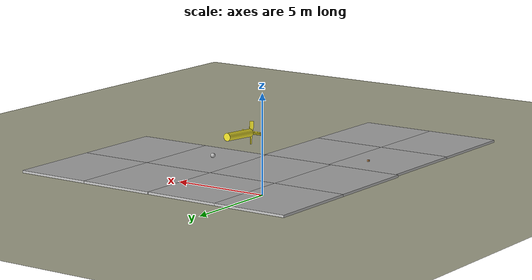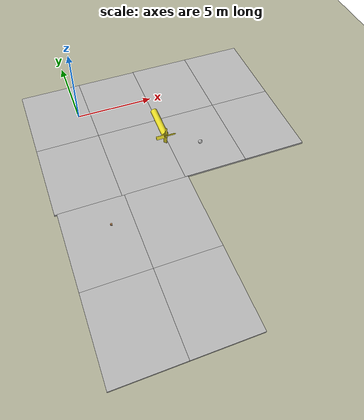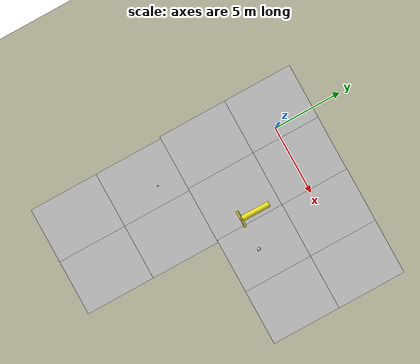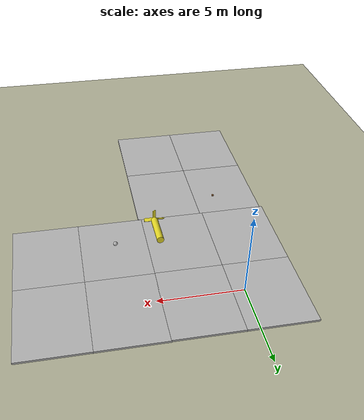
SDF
<sdf version="1.7">
 <world name="default">
  <model name="ground_plane_residential">
   <static>1</static>
   <link name="link">
    <collision name="collision">
     <geometry><plane><normal>0 0 1</normal><size>100 100</size></plane></geometry>
     <surface><friction><ode><mu>100</mu><mu2>50</mu2></ode></friction></surface>
    </collision>
    <visual name="visual">
     <cast_shadows>0</cast_shadows>
     <geometry><plane><normal>0 0 1</normal><size>100 100</size></plane></geometry>
     <material>
      <script><uri>file://media/materials/scripts/gazebo.material</uri><name>Gazebo/Residential</name></script>
     </material>
    </visual>
   </link>
  </model>
  <light name="sun" type="directional">
   <pose>0 0 10 0 -0 0</pose>
   <diffuse>0.8 0.8 0.8 1</diffuse>
   <specular>0.2 0.2 0.2 1</specular>
   <attenuation>
    <range>1000</range>
    <constant>0.9</constant>
    <linear>0.01</linear>
    <quadratic>0.001</quadratic>
   </attenuation>
   <direction>-0.5 0.1 -0.9</direction>
   <spot><inner_angle>0</inner_angle><outer_angle>0</outer_angle><falloff>0</falloff></spot>
  </light>
  <plugin name="ros_interface_plugin" filename="librotors_gazebo_ros_interface_plugin.so"/>
  <spherical_coordinates>
   <surface_model>EARTH_WGS84</surface_model>
   <latitude_deg>47.3667</latitude_deg>
   <longitude_deg>8.55</longitude_deg>
   <elevation>500</elevation>
   <heading_deg>0</heading_deg>
  </spherical_coordinates>
  <physics type="ode">
   <ode>
    <solver>
     <type>quick</type>
     <iters>1000</iters>
     <sor>1.3</sor>
     <use_dynamic_moi_rescaling>0</use_dynamic_moi_rescaling>
    </solver>
    <constraints>
     <cfm>0</cfm>
     <erp>0.2</erp>
     <contact_max_correcting_vel>100</contact_max_correcting_vel>
     <contact_surface_layer>0.001</contact_surface_layer>
    </constraints>
   </ode>
   <max_step_size>0.01</max_step_size>
   <real_time_factor>1</real_time_factor>
   <real_time_update_rate>100</real_time_update_rate>
  </physics>
  <gravity>0 0 -9.8</gravity>
  <magnetic_field>6e-06 2.3e-05 -4.2e-05</magnetic_field>
  <atmosphere type="adiabatic"/>
  <scene><ambient>0.4 0.4 0.4 1</ambient><background>0.7 0.7 0.7 1</background><shadows>1</shadows></scene>
  <model name="mud_box">
   <static>1</static>
   <link name="link">
    <collision name="collision"><geometry><box><size>8 10 0.2</size></box></geometry></collision>
    <visual name="visual_1">
     <pose>-2 2.5 0 0 -0 0</pose>
     <cast_shadows>0</cast_shadows>
     <geometry><box><size>4 5 0.2</size></box></geometry>
     <material>
      <script>
       <uri>model://mud_box/materials/scripts</uri>
       <uri>model://mud_box/materials/textures</uri>
       <name>vrc/mud</name>
      </script>
     </material>
    </visual>
    <visual name="visual_2">
     <pose>2 2.5 0 0 -0 0</pose>
     <cast_shadows>0</cast_shadows>
     <geometry><box><size>4 5 0.2</size></box></geometry>
     <material>
      <script>
       <uri>model://mud_box/materials/scripts</uri>
       <uri>model://mud_box/materials/textures</uri>
       <name>vrc/mud</name>
      </script>
     </material>
    </visual>
    <visual name="visual_3">
     <pose>2 -2.5 0 0 -0 0</pose>
     <cast_shadows>0</cast_shadows>
     <geometry><box><size>4 5 0.2</size></box></geometry>
     <material>
      <script>
       <uri>model://mud_box/materials/scripts</uri>
       <uri>model://mud_box/materials/textures</uri>
       <name>vrc/mud</name>
      </script>
     </material>
    </visual>
    <visual name="visual_4">
     <pose>-2 -2.5 0 0 -0 0</pose>
     <cast_shadows>0</cast_shadows>
     <geometry><box><size>4 5 0.2</size></box></geometry>
     <material>
      <script>
       <uri>model://mud_box/materials/scripts</uri>
       <uri>model://mud_box/materials/textures</uri>
       <name>vrc/mud</name>
      </script>
     </material>
    </visual>
   </link>
   <pose>0.740394 -2.11921 0 0 -0 0</pose>
  </model>
  <model name="mud_box_clone">
   <static>1</static>
   <link name="link">
    <collision name="collision"><geometry><box><size>8 10 0.2</size></box></geometry></collision>
    <visual name="visual_1">
     <pose>-2 2.5 0 0 -0 0</pose>
     <cast_shadows>0</cast_shadows>
     <geometry><box><size>4 5 0.2</size></box></geometry>
     <material>
      <script>
       <uri>model://mud_box/materials/scripts</uri>
       <uri>model://mud_box/materials/textures</uri>
       <name>vrc/mud</name>
      </script>
     </material>
    </visual>
    <visual name="visual_2">
     <pose>2 2.5 0 0 -0 0</pose>
     <cast_shadows>0</cast_shadows>
     <geometry><box><size>4 5 0.2</size></box></geometry>
     <material>
      <script>
       <uri>model://mud_box/materials/scripts</uri>
       <uri>model://mud_box/materials/textures</uri>
       <name>vrc/mud</name>
      </script>
     </material>
    </visual>
    <visual name="visual_3">
     <pose>2 -2.5 0 0 -0 0</pose>
     <cast_shadows>0</cast_shadows>
     <geometry><box><size>4 5 0.2</size></box></geometry>
     <material>
      <script>
       <uri>model://mud_box/materials/scripts</uri>
       <uri>model://mud_box/materials/textures</uri>
       <name>vrc/mud</name>
      </script>
     </material>
    </visual>
    <visual name="visual_4">
     <pose>-2 -2.5 0 0 -0 0</pose>
     <cast_shadows>0</cast_shadows>
     <geometry><box><size>4 5 0.2</size></box></geometry>
     <material>
      <script>
       <uri>model://mud_box/materials/scripts</uri>
       <uri>model://mud_box/materials/textures</uri>
       <name>vrc/mud</name>
      </script>
     </material>
    </visual>
   </link>
   <pose>0.884812 -12.1026 0 0 -0 0</pose>
  </model>
  <model name="mud_box_clone_0">
   <static>1</static>
   <link name="link">
    <collision name="collision"><geometry><box><size>8 10 0.2</size></box></geometry></collision>
    <visual name="visual_1">
     <pose>-2 2.5 0 0 -0 0</pose>
     <cast_shadows>0</cast_shadows>
     <geometry><box><size>4 5 0.2</size></box></geometry>
     <material>
      <script>
       <uri>model://mud_box/materials/scripts</uri>
       <uri>model://mud_box/materials/textures</uri>
       <name>vrc/mud</name>
      </script>
     </material>
    </visual>
    <visual name="visual_2">
     <pose>2 2.5 0 0 -0 0</pose>
     <cast_shadows>0</cast_shadows>
     <geometry><box><size>4 5 0.2</size></box></geometry>
     <material>
      <script>
       <uri>model://mud_box/materials/scripts</uri>
       <uri>model://mud_box/materials/textures</uri>
       <name>vrc/mud</name>
      </script>
     </material>
    </visual>
    <visual name="visual_3">
     <pose>2 -2.5 0 0 -0 0</pose>
     <cast_shadows>0</cast_shadows>
     <geometry><box><size>4 5 0.2</size></box></geometry>
     <material>
      <script>
       <uri>model://mud_box/materials/scripts</uri>
       <uri>model://mud_box/materials/textures</uri>
       <name>vrc/mud</name>
      </script>
     </material>
    </visual>
    <visual name="visual_4">
     <pose>-2 -2.5 0 0 -0 0</pose>
     <cast_shadows>0</cast_shadows>
     <geometry><box><size>4 5 0.2</size></box></geometry>
     <material>
      <script>
       <uri>model://mud_box/materials/scripts</uri>
       <uri>model://mud_box/materials/textures</uri>
       <name>vrc/mud</name>
      </script>
     </material>
    </visual>
   </link>
   <pose>8.70859 -2.09258 0 0 -0 0</pose>
  </model>
  <model name="frc2016_ball">
   <pose>6.60723 -4.91973 0.226857 0 -0 0</pose>
   <link name="link">
    <inertial>
     <mass>0.213</mass>
     <inertia>
      <ixx>0.00322667</ixx>
      <ixy>0</ixy>
      <ixz>0</ixz>
      <iyy>0.00322667</iyy>
      <iyz>0</iyz>
      <izz>0.00322667</izz>
     </inertia>
    </inertial>
    <visual name="visual"><geometry><sphere><radius>0.127</radius></sphere></geometry></visual>
    <collision name="collision">
     <geometry><sphere><radius>0.127</radius></sphere></geometry>
     <surface>
      <bounce><restitution_coefficient>0.15937</restitution_coefficient><threshold>0</threshold></bounce>
      <contact><ode><max_vel>100</max_vel><min_depth>0.001</min_depth></ode></contact>
     </surface>
    </collision>
   </link>
  </model>
  <model name="stone_10_2_5_1cm">
   <link name="link">
    <pose>0 0 0.005 0 -0 0</pose>
    <inertial>
     <mass>0.0628</mass>
     <inertia>
      <ixx>3.79417e-06</ixx>
      <ixy>0</ixy>
      <ixz>0</ixz>
      <iyy>5.28567e-05</iyy>
      <iyz>0</iyz>
      <izz>5.56042e-05</izz>
     </inertia>
    </inertial>
    <collision name="collision">
     <geometry><box><size>0.1 0.025 0.01</size></box></geometry>
     <surface>
      <contact>
       <poissons_ratio>0.15</poissons_ratio>
       <elastic_modulus>8e+10</elastic_modulus>
       <ode><kp>100000</kp><kd>100</kd><max_vel>100</max_vel><min_depth>0.001</min_depth></ode>
      </contact>
      <friction>
       <torsional>
        <coefficient>1</coefficient>
        <use_patch_radius>0</use_patch_radius>
        <surface_radius>0.01</surface_radius>
       </torsional>
      </friction>
     </surface>
    </collision>
    <visual name="visual">
     <geometry><box><size>0.1 0.025 0.01</size></box></geometry>
     <material>
      <script><uri>file://media/materials/scripts/gazebo.material</uri><name>Gazebo/Grey</name></script>
     </material>
    </visual>
   </link>
  </model>
  <model name="submarine">
   <pose>4.23089 -3.91284 1.77543 1.62893 -0 0</pose>
   <link name="body">
    <inertial>
     <mass>251.327</mass>
     <inertia><ixx>86.2891</ixx><ixy>0</ixy><ixz>0</ixz><iyy>86.2891</iyy><iyz>0</iyz><izz>5.02655</izz></inertia>
    </inertial>
    <visual name="body_visual">
     <geometry><cylinder><radius>0.2</radius><length>2</length></cylinder></geometry>
     <material>
      <script><uri>file://media/materials/scripts/gazebo.material</uri><name>Gazebo/Yellow</name></script>
     </material>
    </visual>
    <collision name="body_collision">
     <geometry><cylinder><radius>0.2</radius><length>2</length></cylinder></geometry>
    </collision>
    <visual name="spacer_visual">
     <pose>0 0 1.05855 0 -0 0</pose>
     <geometry><cylinder><radius>0.0933402</radius><length>0.127211</length></cylinder></geometry>
     <material>
      <script><uri>file://media/materials/scripts/gazebo.material</uri><name>Gazebo/Yellow</name></script>
     </material>
    </visual>
   </link>
   <link name="propeller">
    <pose>0 0 1.09 3.14159 -0 0</pose>
    <inertial>
     <mass>21.82</mass>
     <inertia>
      <ixx>0.459994</ixx>
      <ixy>0</ixy>
      <ixz>0</ixz>
      <iyy>0.459994</iyy>
      <iyz>0</iyz>
      <izz>0.909167</izz>
     </inertia>
    </inertial>
    <visual name="blade1_visual">
     <pose>0.34334 0 0 0.785398 -0 0</pose>
     <geometry><box><size>0.5 0.2 0.05455</size></box></geometry>
     <material>
      <script><uri>file://media/materials/scripts/gazebo.material</uri><name>Gazebo/Yellow</name></script>
     </material>
    </visual>
    <collision name="blade1_collision">
     <pose>0.34334 0 0 0.785398 -0 0</pose>
     <geometry><box><size>0.5 0.2 0.05455</size></box></geometry>
    </collision>
    <visual name="blade2_visual">
     <pose>0 0.34334 0 0.785398 0 1.5708</pose>
     <geometry><box><size>0.5 0.2 0.05455</size></box></geometry>
     <material>
      <script><uri>file://media/materials/scripts/gazebo.material</uri><name>Gazebo/Yellow</name></script>
     </material>
    </visual>
    <collision name="blade2_collision">
     <pose>0 0.34334 0 0.785398 0 1.5708</pose>
     <geometry><box><size>0.5 0.2 0.05455</size></box></geometry>
    </collision>
    <visual name="blade3_visual">
     <pose>-0.34334 -0 0 -0.785398 0 0</pose>
     <geometry><box><size>0.5 0.2 0.05455</size></box></geometry>
     <material>
      <script><uri>file://media/materials/scripts/gazebo.material</uri><name>Gazebo/Yellow</name></script>
     </material>
    </visual>
    <collision name="blade3_collision">
     <pose>-0.34334 -0 0 -0.785398 0 0</pose>
     <geometry><box><size>0.5 0.2 0.05455</size></box></geometry>
    </collision>
    <visual name="blade4_visual">
     <pose>-0 -0.34334 0 -0.785398 -0 1.5708</pose>
     <geometry><box><size>0.5 0.2 0.05455</size></box></geometry>
     <material>
      <script><uri>file://media/materials/scripts/gazebo.material</uri><name>Gazebo/Yellow</name></script>
     </material>
    </visual>
    <collision name="blade4_collision">
     <pose>-0 -0.34334 0 -0.785398 -0 1.5708</pose>
     <geometry><box><size>0.5 0.2 0.05455</size></box></geometry>
    </collision>
   </link>
   <joint name="spinning_joint" type="revolute">
    <parent>body</parent>
    <child>propeller</child>
    <axis>
     <xyz expressed_in="__model__">0 0 1</xyz>
     <limit><lower>-1e+12</lower><upper>1e+12</upper><effort>-1</effort><velocity>-1</velocity></limit>
     <dynamics><spring_reference>0</spring_reference><spring_stiffness>0</spring_stiffness></dynamics>
    </axis>
   </joint>
   <plugin name="submarine_propeller_1" filename="libLiftDragPlugin.so">
    <air_density>1000</air_density>
    <cla>1.2535816618911175</cla>
    <cla_stall>-1.4326647564469914</cla_stall>
    <cda>0</cda>
    <cda_stall>1.4326647564469914</cda_stall>
    <alpha_stall>1.396</alpha_stall>
    <a0>0</a0>
    <area>0.27637</area>
    <upward>0 -0.7071067811865476 -0.7071067811865475</upward>
    <forward>0 -0.7071067811865475 0.7071067811865476</forward>
    <link_name>propeller</link_name>
    <cp>0.35 0 0</cp>
   </plugin>
   <plugin name="submarine_propeller_2" filename="libLiftDragPlugin.so">
    <air_density>1000</air_density>
    <cla>1.2535816618911175</cla>
    <cla_stall>-1.4326647564469914</cla_stall>
    <cda>0</cda>
    <cda_stall>1.4326647564469914</cda_stall>
    <alpha_stall>1.396</alpha_stall>
    <a0>0</a0>
    <area>0.27637</area>
    <upward>-0.7071067811865475 0 -0.7071067811865476</upward>
    <forward>-0.7071067811865476 0 0.7071067811865475</forward>
    <link_name>propeller</link_name>
    <cp>0 -0.35 0</cp>
   </plugin>
   <plugin name="submarine_propeller_3" filename="libLiftDragPlugin.so">
    <air_density>1000</air_density>
    <cla>1.2535816618911175</cla>
    <cla_stall>-1.4326647564469914</cla_stall>
    <cda>0</cda>
    <cda_stall>1.4326647564469914</cda_stall>
    <alpha_stall>1.396</alpha_stall>
    <a0>0</a0>
    <area>0.27637</area>
    <upward>0 0.7071067811865475 -0.7071067811865476</upward>
    <forward>0 -0.7071067811865476 -0.7071067811865475</forward>
    <link_name>propeller</link_name>
    <cp>-0.35 0 0</cp>
   </plugin>
   <plugin name="submarine_propeller_4" filename="libLiftDragPlugin.so">
    <air_density>1000</air_density>
    <cla>1.2535816618911175</cla>
    <cla_stall>-1.4326647564469914</cla_stall>
    <cda>0</cda>
    <cda_stall>1.4326647564469914</cda_stall>
    <alpha_stall>1.396</alpha_stall>
    <a0>0</a0>
    <area>0.27637</area>
    <upward>0.7071067811865476 0 -0.7071067811865475</upward>
    <forward>0.7071067811865475 0 0.7071067811865476</forward>
    <link_name>propeller</link_name>
    <cp>0 0.35 0</cp>
   </plugin>
   <plugin name="buoyancy" filename="libBuoyancyPlugin.so"><fluid_density>1000</fluid_density></plugin>
  </model>
  <model name="wood_cube_10cm">
   <link name="link">
    <pose>0 0 0.05 0 -0 0</pose>
    <inertial>
     <mass>0.5167</mass>
     <inertia>
      <ixx>0.000861167</ixx>
      <ixy>0</ixy>
      <ixz>0</ixz>
      <iyy>0.000861167</iyy>
      <iyz>0</iyz>
      <izz>0.000861167</izz>
     </inertia>
    </inertial>
    <collision name="collision">
     <geometry><box><size>0.1 0.1 0.1</size></box></geometry>
     <surface>
      <contact>
       <poissons_ratio>0.347</poissons_ratio>
       <elastic_modulus>8.8e+09</elastic_modulus>
       <ode><kp>100000</kp><kd>100</kd><max_vel>100</max_vel><min_depth>0.001</min_depth></ode>
      </contact>
      <friction>
       <torsional>
        <coefficient>1</coefficient>
        <use_patch_radius>0</use_patch_radius>
        <surface_radius>0.01</surface_radius>
       </torsional>
      </friction>
     </surface>
    </collision>
    <visual name="visual">
     <geometry><box><size>0.1 0.1 0.1</size></box></geometry>
     <material>
      <script><uri>file://media/materials/scripts/gazebo.material</uri><name>Gazebo/Wood</name></script>
     </material>
    </visual>
   </link>
   <pose>-0.4139 -8.81304 0.098987 0 -0 0</pose>
  </model>
 </world>
</sdf>
